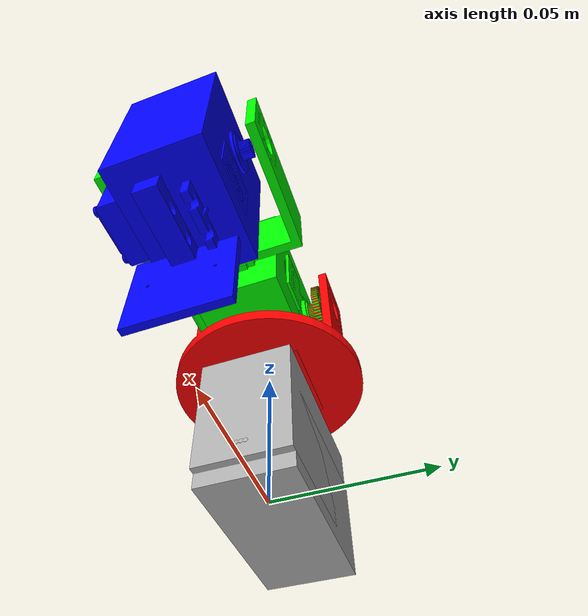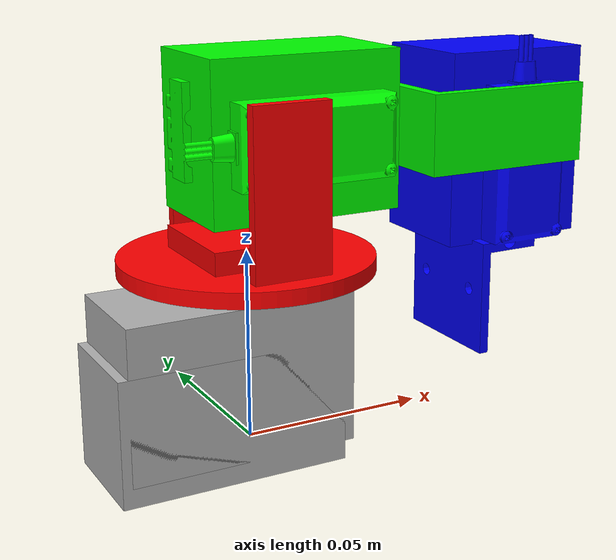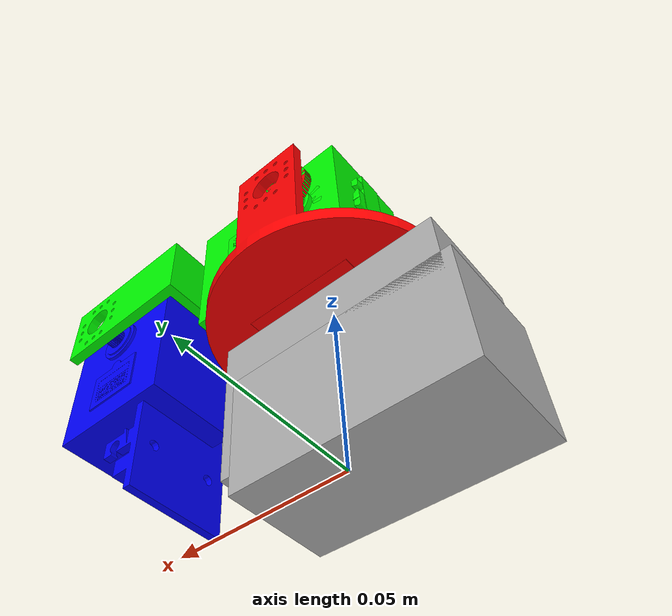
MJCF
<mujoco model="mono_observer">
  <compiler angle="radian" meshdir="../meshes/"/>

  <asset>
    <mesh name="Base" content_type="model/stl" file="Base.stl"/>
    <mesh name="Cintura" content_type="model/stl" file="Cintura.stl"/>
    <mesh name="Antebrazo" content_type="model/stl" file="Antebrazo.stl"/>
    <mesh name="Camara" content_type="model/stl" file="Camara.stl"/>
  </asset>

  <worldbody>
    <geom type="mesh" contype="0" conaffinity="0" group="1" density="0" rgba="0.7 0.7 0.7 1" mesh="Base"/>
    <geom size="0.03 0.015 0.02" pos="-0.0075 0 0.02" type="box" rgba="0.7 0.7 0.7 1"/>
    <body name="link_1" pos="0 0 0.05">
      <inertial pos="0 0 0" mass="0.02" diaginertia="1 1 1"/>
      <joint name="base_1_joint" pos="0 0 0" axis="0 0 1" range="-3.1415 0" actuatorfrcrange="-30 30"/>
      <geom pos="0 0 -0.05" quat="1 0 0 0" type="mesh" contype="0" conaffinity="0" group="1" density="0" rgba="1 0 0 1" mesh="Cintura"/>
      <geom size="0.015 0.015 0.005" type="box" rgba="1 0 0 1"/>
      <body name="link_2" pos="0 0 0.03" quat="0.707105 0 0.707108 0">
        <inertial pos="0 0 0" mass="0.02" diaginertia="1 1 1"/>
        <joint name="1_2_joint" pos="0 0 0" axis="0 1 0" range="-1.7505 1.7505" actuatorfrcrange="-30 30"/>
        <geom pos="0 0 -0.08" type="mesh" contype="0" conaffinity="0" group="1" density="0" rgba="0 1 0 1" mesh="Antebrazo"/>
        <geom size="0.02 0.015 0.025" pos="0 0 0.01" type="box" rgba="0 1 0 1"/>
        <body name="link_3" pos="0 0 0.071" quat="0.707105 0 0.707108 0">
          <inertial pos="0 0 0" mass="0.02" diaginertia="1 1 1"/>
          <joint name="2_3_joint" pos="0 0 0" axis="0 1 0" range="-1.7505 1.7505" actuatorfrcrange="-30 30"/>
          <geom pos="0 0 -0.15" type="mesh" contype="0" conaffinity="0" group="1" density="0" rgba="0 0 1 1" mesh="Camara"/>
          <geom size="0.02 0.015 0.025" pos="0 0 0.0075" type="box" rgba="0 0 1 1"/>
        </body>
      </body>
    </body>
  </worldbody>
</mujoco>
